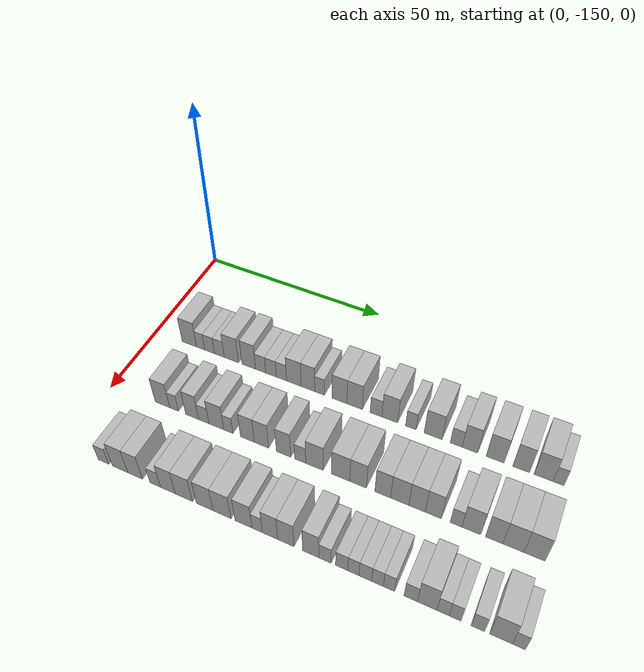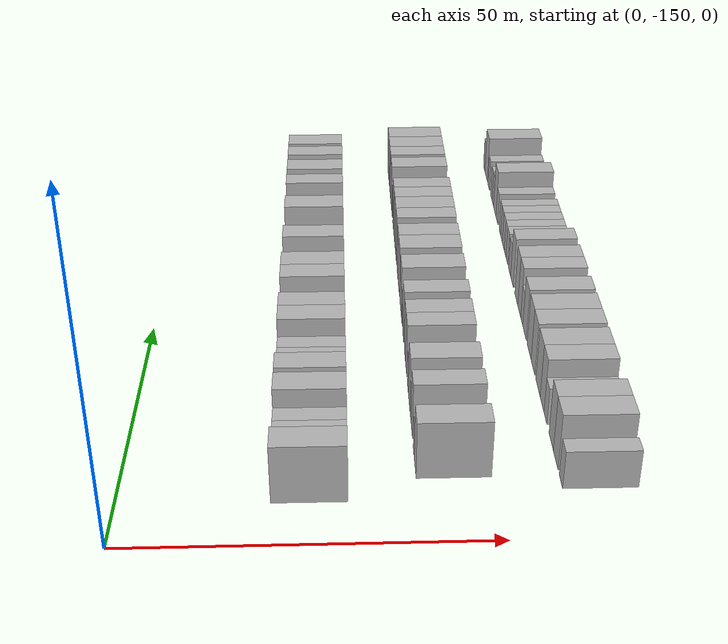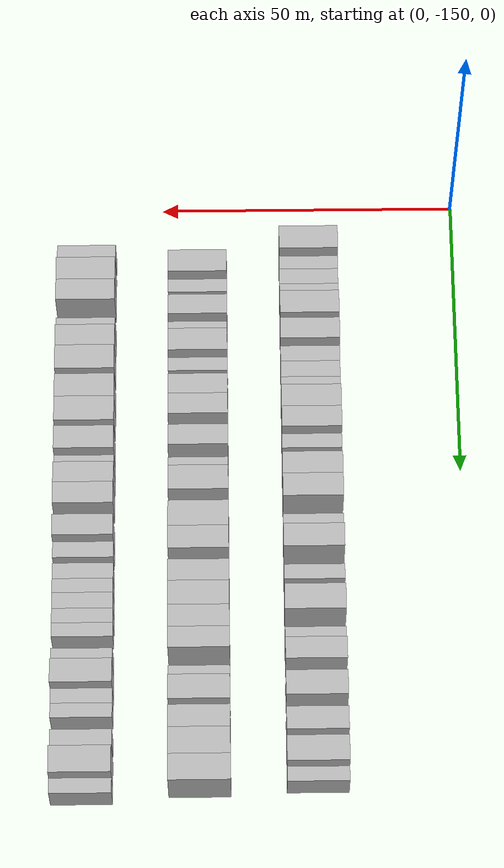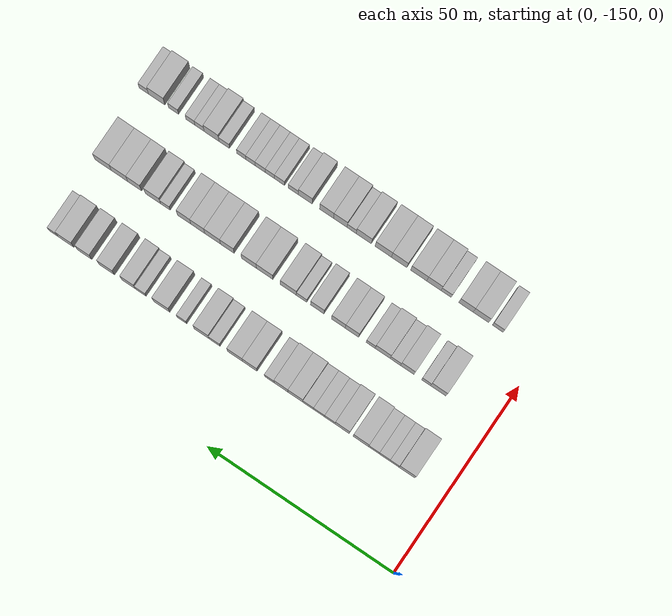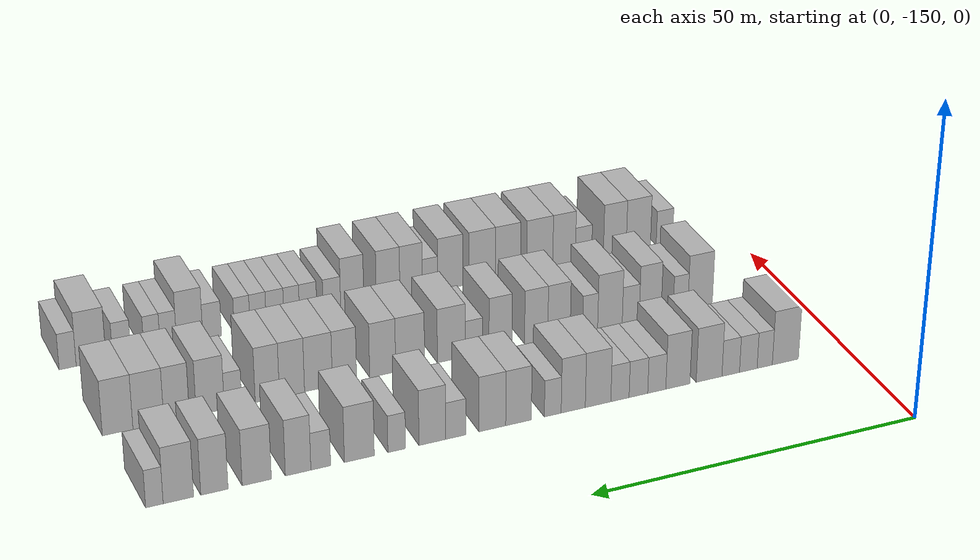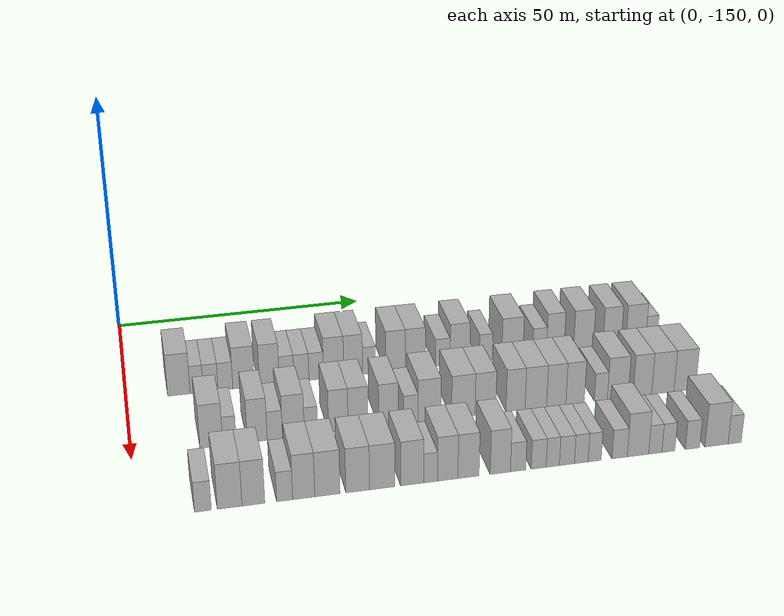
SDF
<sdf version="1.6">
 <world name="default">
  <model name="building_25">
   <static>1</static>
   <pose>25.0000 -140.0256 0 0.000000 0.000000 0.000000</pose>
   <link name="link">
    <pose>0 0 4.50 0 0 0</pose>
    <collision name="collision"><geometry><box><size>10.0000 4.2623 9.0000</size></box></geometry></collision>
    <visual name="visual">
     <cast_shadows>0</cast_shadows>
     <geometry><box><size>10.0000 4.2623 9.0000</size></box></geometry>
     <material>
      <script>
       <uri>model://HANNAS_wall/materials/scripts</uri>
       <uri>model://HANNAS_wall/materials/textures</uri>
       <name>vrc/HANNAS_wall</name>
      </script>
     </material>
    </visual>
   </link>
  </model>
  <model name="building_26">
   <static>1</static>
   <pose>25.0000 -136.6577 0 0.000000 0.000000 0.000000</pose>
   <link name="link">
    <pose>0 0 3.00 0 0 0</pose>
    <collision name="collision"><geometry><box><size>10.0000 2.4735 6.0000</size></box></geometry></collision>
    <visual name="visual">
     <cast_shadows>0</cast_shadows>
     <geometry><box><size>10.0000 2.4735 6.0000</size></box></geometry>
     <material>
      <script>
       <uri>model://HANNAS_wall/materials/scripts</uri>
       <uri>model://HANNAS_wall/materials/textures</uri>
       <name>vrc/HANNAS_wall</name>
      </script>
     </material>
    </visual>
   </link>
  </model>
  <model name="building_27">
   <static>1</static>
   <pose>25.0000 -133.9958 0 0.000000 0.000000 0.000000</pose>
   <link name="link">
    <pose>0 0 3.00 0 0 0</pose>
    <collision name="collision"><geometry><box><size>10.0000 2.8502 6.0000</size></box></geometry></collision>
    <visual name="visual">
     <cast_shadows>0</cast_shadows>
     <geometry><box><size>10.0000 2.8502 6.0000</size></box></geometry>
     <material>
      <script>
       <uri>model://HANNAS_wall/materials/scripts</uri>
       <uri>model://HANNAS_wall/materials/textures</uri>
       <name>vrc/HANNAS_wall</name>
      </script>
     </material>
    </visual>
   </link>
  </model>
  <model name="building_28">
   <static>1</static>
   <pose>25.0000 -131.1555 0 0.000000 0.000000 0.000000</pose>
   <link name="link">
    <pose>0 0 3.00 0 0 0</pose>
    <collision name="collision"><geometry><box><size>10.0000 2.8305 6.0000</size></box></geometry></collision>
    <visual name="visual">
     <cast_shadows>0</cast_shadows>
     <geometry><box><size>10.0000 2.8305 6.0000</size></box></geometry>
     <material>
      <script>
       <uri>model://HANNAS_wall/materials/scripts</uri>
       <uri>model://HANNAS_wall/materials/textures</uri>
       <name>vrc/HANNAS_wall</name>
      </script>
     </material>
    </visual>
   </link>
  </model>
  <model name="building_29">
   <static>1</static>
   <pose>25.0000 -127.6747 0 0.000000 0.000000 0.000000</pose>
   <link name="link">
    <pose>0 0 4.50 0 0 0</pose>
    <collision name="collision"><geometry><box><size>10.0000 4.1310 9.0000</size></box></geometry></collision>
    <visual name="visual">
     <cast_shadows>0</cast_shadows>
     <geometry><box><size>10.0000 4.1310 9.0000</size></box></geometry>
     <material>
      <script>
       <uri>model://HANNAS_wall/materials/scripts</uri>
       <uri>model://HANNAS_wall/materials/textures</uri>
       <name>vrc/HANNAS_wall</name>
      </script>
     </material>
    </visual>
   </link>
  </model>
  <model name="building_30">
   <static>1</static>
   <pose>25.0000 -122.6951 0 0.000000 0.000000 0.000000</pose>
   <link name="link">
    <pose>0 0 4.50 0 0 0</pose>
    <collision name="collision"><geometry><box><size>10.0000 3.8283 9.0000</size></box></geometry></collision>
    <visual name="visual">
     <cast_shadows>0</cast_shadows>
     <geometry><box><size>10.0000 3.8283 9.0000</size></box></geometry>
     <material>
      <script>
       <uri>model://HANNAS_wall/materials/scripts</uri>
       <uri>model://HANNAS_wall/materials/textures</uri>
       <name>vrc/HANNAS_wall</name>
      </script>
     </material>
    </visual>
   </link>
  </model>
  <model name="building_31">
   <static>1</static>
   <pose>25.0000 -119.3521 0 0.000000 0.000000 0.000000</pose>
   <link name="link">
    <pose>0 0 3.00 0 0 0</pose>
    <collision name="collision"><geometry><box><size>10.0000 2.8576 6.0000</size></box></geometry></collision>
    <visual name="visual">
     <cast_shadows>0</cast_shadows>
     <geometry><box><size>10.0000 2.8576 6.0000</size></box></geometry>
     <material>
      <script>
       <uri>model://HANNAS_wall/materials/scripts</uri>
       <uri>model://HANNAS_wall/materials/textures</uri>
       <name>vrc/HANNAS_wall</name>
      </script>
     </material>
    </visual>
   </link>
  </model>
  <model name="building_32">
   <static>1</static>
   <pose>25.0000 -116.4563 0 0.000000 0.000000 0.000000</pose>
   <link name="link">
    <pose>0 0 3.00 0 0 0</pose>
    <collision name="collision"><geometry><box><size>10.0000 2.9341 6.0000</size></box></geometry></collision>
    <visual name="visual">
     <cast_shadows>0</cast_shadows>
     <geometry><box><size>10.0000 2.9341 6.0000</size></box></geometry>
     <material>
      <script>
       <uri>model://HANNAS_wall/materials/scripts</uri>
       <uri>model://HANNAS_wall/materials/textures</uri>
       <name>vrc/HANNAS_wall</name>
      </script>
     </material>
    </visual>
   </link>
  </model>
  <model name="building_33">
   <static>1</static>
   <pose>25.0000 -113.5589 0 0.000000 0.000000 0.000000</pose>
   <link name="link">
    <pose>0 0 3.00 0 0 0</pose>
    <collision name="collision"><geometry><box><size>10.0000 2.8606 6.0000</size></box></geometry></collision>
    <visual name="visual">
     <cast_shadows>0</cast_shadows>
     <geometry><box><size>10.0000 2.8606 6.0000</size></box></geometry>
     <material>
      <script>
       <uri>model://HANNAS_wall/materials/scripts</uri>
       <uri>model://HANNAS_wall/materials/textures</uri>
       <name>vrc/HANNAS_wall</name>
      </script>
     </material>
    </visual>
   </link>
  </model>
  <model name="building_34">
   <static>1</static>
   <pose>25.0000 -110.1387 0 0.000000 0.000000 0.000000</pose>
   <link name="link">
    <pose>0 0 4.50 0 0 0</pose>
    <collision name="collision"><geometry><box><size>10.0000 3.9799 9.0000</size></box></geometry></collision>
    <visual name="visual">
     <cast_shadows>0</cast_shadows>
     <geometry><box><size>10.0000 3.9799 9.0000</size></box></geometry>
     <material>
      <script>
       <uri>model://HANNAS_wall/materials/scripts</uri>
       <uri>model://HANNAS_wall/materials/textures</uri>
       <name>vrc/HANNAS_wall</name>
      </script>
     </material>
    </visual>
   </link>
  </model>
  <model name="building_35">
   <static>1</static>
   <pose>25.0000 -106.2834 0 0.000000 0.000000 0.000000</pose>
   <link name="link">
    <pose>0 0 4.50 0 0 0</pose>
    <collision name="collision"><geometry><box><size>10.0000 3.7308 9.0000</size></box></geometry></collision>
    <visual name="visual">
     <cast_shadows>0</cast_shadows>
     <geometry><box><size>10.0000 3.7308 9.0000</size></box></geometry>
     <material>
      <script>
       <uri>model://HANNAS_wall/materials/scripts</uri>
       <uri>model://HANNAS_wall/materials/textures</uri>
       <name>vrc/HANNAS_wall</name>
      </script>
     </material>
    </visual>
   </link>
  </model>
  <model name="building_36">
   <static>1</static>
   <pose>25.0000 -103.1273 0 0.000000 0.000000 0.000000</pose>
   <link name="link">
    <pose>0 0 3.00 0 0 0</pose>
    <collision name="collision"><geometry><box><size>10.0000 2.5815 6.0000</size></box></geometry></collision>
    <visual name="visual">
     <cast_shadows>0</cast_shadows>
     <geometry><box><size>10.0000 2.5815 6.0000</size></box></geometry>
     <material>
      <script>
       <uri>model://HANNAS_wall/materials/scripts</uri>
       <uri>model://HANNAS_wall/materials/textures</uri>
       <name>vrc/HANNAS_wall</name>
      </script>
     </material>
    </visual>
   </link>
  </model>
  <model name="building_37">
   <static>1</static>
   <pose>25.0000 -97.8834 0 0.000000 0.000000 0.000000</pose>
   <link name="link">
    <pose>0 0 4.50 0 0 0</pose>
    <collision name="collision"><geometry><box><size>10.0000 3.9064 9.0000</size></box></geometry></collision>
    <visual name="visual">
     <cast_shadows>0</cast_shadows>
     <geometry><box><size>10.0000 3.9064 9.0000</size></box></geometry>
     <material>
      <script>
       <uri>model://HANNAS_wall/materials/scripts</uri>
       <uri>model://HANNAS_wall/materials/textures</uri>
       <name>vrc/HANNAS_wall</name>
      </script>
     </material>
    </visual>
   </link>
  </model>
  <model name="building_38">
   <static>1</static>
   <pose>25.0000 -93.9067 0 0.000000 0.000000 0.000000</pose>
   <link name="link">
    <pose>0 0 4.50 0 0 0</pose>
    <collision name="collision"><geometry><box><size>10.0000 4.0469 9.0000</size></box></geometry></collision>
    <visual name="visual">
     <cast_shadows>0</cast_shadows>
     <geometry><box><size>10.0000 4.0469 9.0000</size></box></geometry>
     <material>
      <script>
       <uri>model://HANNAS_wall/materials/scripts</uri>
       <uri>model://HANNAS_wall/materials/textures</uri>
       <name>vrc/HANNAS_wall</name>
      </script>
     </material>
    </visual>
   </link>
  </model>
  <model name="building_39">
   <static>1</static>
   <pose>25.0000 -88.3887 0 0.000000 0.000000 0.000000</pose>
   <link name="link">
    <pose>0 0 3.00 0 0 0</pose>
    <collision name="collision"><geometry><box><size>10.0000 2.9891 6.0000</size></box></geometry></collision>
    <visual name="visual">
     <cast_shadows>0</cast_shadows>
     <geometry><box><size>10.0000 2.9891 6.0000</size></box></geometry>
     <material>
      <script>
       <uri>model://HANNAS_wall/materials/scripts</uri>
       <uri>model://HANNAS_wall/materials/textures</uri>
       <name>vrc/HANNAS_wall</name>
      </script>
     </material>
    </visual>
   </link>
  </model>
  <model name="building_40">
   <static>1</static>
   <pose>25.0000 -84.8901 0 0.000000 0.000000 0.000000</pose>
   <link name="link">
    <pose>0 0 4.50 0 0 0</pose>
    <collision name="collision"><geometry><box><size>10.0000 4.0083 9.0000</size></box></geometry></collision>
    <visual name="visual">
     <cast_shadows>0</cast_shadows>
     <geometry><box><size>10.0000 4.0083 9.0000</size></box></geometry>
     <material>
      <script>
       <uri>model://HANNAS_wall/materials/scripts</uri>
       <uri>model://HANNAS_wall/materials/textures</uri>
       <name>vrc/HANNAS_wall</name>
      </script>
     </material>
    </visual>
   </link>
  </model>
  <model name="building_41">
   <static>1</static>
   <pose>25.0000 -79.5864 0 0.000000 0.000000 0.000000</pose>
   <link name="link">
    <pose>0 0 3.00 0 0 0</pose>
    <collision name="collision"><geometry><box><size>10.0000 2.5991 6.0000</size></box></geometry></collision>
    <visual name="visual">
     <cast_shadows>0</cast_shadows>
     <geometry><box><size>10.0000 2.5991 6.0000</size></box></geometry>
     <material>
      <script>
       <uri>model://HANNAS_wall/materials/scripts</uri>
       <uri>model://HANNAS_wall/materials/textures</uri>
       <name>vrc/HANNAS_wall</name>
      </script>
     </material>
    </visual>
   </link>
  </model>
  <model name="building_42">
   <static>1</static>
   <pose>25.0000 -74.0940 0 0.000000 0.000000 0.000000</pose>
   <link name="link">
    <pose>0 0 4.50 0 0 0</pose>
    <collision name="collision"><geometry><box><size>10.0000 4.3855 9.0000</size></box></geometry></collision>
    <visual name="visual">
     <cast_shadows>0</cast_shadows>
     <geometry><box><size>10.0000 4.3855 9.0000</size></box></geometry>
     <material>
      <script>
       <uri>model://HANNAS_wall/materials/scripts</uri>
       <uri>model://HANNAS_wall/materials/textures</uri>
       <name>vrc/HANNAS_wall</name>
      </script>
     </material>
    </visual>
   </link>
  </model>
  <model name="building_43">
   <static>1</static>
   <pose>25.0000 -68.4667 0 0.000000 0.000000 0.000000</pose>
   <link name="link">
    <pose>0 0 3.00 0 0 0</pose>
    <collision name="collision"><geometry><box><size>10.0000 2.8691 6.0000</size></box></geometry></collision>
    <visual name="visual">
     <cast_shadows>0</cast_shadows>
     <geometry><box><size>10.0000 2.8691 6.0000</size></box></geometry>
     <material>
      <script>
       <uri>model://HANNAS_wall/materials/scripts</uri>
       <uri>model://HANNAS_wall/materials/textures</uri>
       <name>vrc/HANNAS_wall</name>
      </script>
     </material>
    </visual>
   </link>
  </model>
  <model name="building_44">
   <static>1</static>
   <pose>25.0000 -65.1917 0 0.000000 0.000000 0.000000</pose>
   <link name="link">
    <pose>0 0 4.50 0 0 0</pose>
    <collision name="collision"><geometry><box><size>10.0000 3.6809 9.0000</size></box></geometry></collision>
    <visual name="visual">
     <cast_shadows>0</cast_shadows>
     <geometry><box><size>10.0000 3.6809 9.0000</size></box></geometry>
     <material>
      <script>
       <uri>model://HANNAS_wall/materials/scripts</uri>
       <uri>model://HANNAS_wall/materials/textures</uri>
       <name>vrc/HANNAS_wall</name>
      </script>
     </material>
    </visual>
   </link>
  </model>
  <model name="building_45">
   <static>1</static>
   <pose>25.0000 -59.2652 0 0.000000 0.000000 0.000000</pose>
   <link name="link">
    <pose>0 0 4.50 0 0 0</pose>
    <collision name="collision"><geometry><box><size>10.0000 4.1720 9.0000</size></box></geometry></collision>
    <visual name="visual">
     <cast_shadows>0</cast_shadows>
     <geometry><box><size>10.0000 4.1720 9.0000</size></box></geometry>
     <material>
      <script>
       <uri>model://HANNAS_wall/materials/scripts</uri>
       <uri>model://HANNAS_wall/materials/textures</uri>
       <name>vrc/HANNAS_wall</name>
      </script>
     </material>
    </visual>
   </link>
  </model>
  <model name="building_46">
   <static>1</static>
   <pose>25.0000 -53.2486 0 0.000000 0.000000 0.000000</pose>
   <link name="link">
    <pose>0 0 4.50 0 0 0</pose>
    <collision name="collision"><geometry><box><size>10.0000 3.8611 9.0000</size></box></geometry></collision>
    <visual name="visual">
     <cast_shadows>0</cast_shadows>
     <geometry><box><size>10.0000 3.8611 9.0000</size></box></geometry>
     <material>
      <script>
       <uri>model://HANNAS_wall/materials/scripts</uri>
       <uri>model://HANNAS_wall/materials/textures</uri>
       <name>vrc/HANNAS_wall</name>
      </script>
     </material>
    </visual>
   </link>
  </model>
  <model name="building_47">
   <static>1</static>
   <pose>25.0000 -48.1842 0 0.000000 0.000000 0.000000</pose>
   <link name="link">
    <pose>0 0 4.50 0 0 0</pose>
    <collision name="collision"><geometry><box><size>10.0000 4.2677 9.0000</size></box></geometry></collision>
    <visual name="visual">
     <cast_shadows>0</cast_shadows>
     <geometry><box><size>10.0000 4.2677 9.0000</size></box></geometry>
     <material>
      <script>
       <uri>model://HANNAS_wall/materials/scripts</uri>
       <uri>model://HANNAS_wall/materials/textures</uri>
       <name>vrc/HANNAS_wall</name>
      </script>
     </material>
    </visual>
   </link>
  </model>
  <model name="building_48">
   <static>1</static>
   <pose>25.0000 -44.8295 0 0.000000 0.000000 0.000000</pose>
   <link name="link">
    <pose>0 0 3.00 0 0 0</pose>
    <collision name="collision"><geometry><box><size>10.0000 2.4418 6.0000</size></box></geometry></collision>
    <visual name="visual">
     <cast_shadows>0</cast_shadows>
     <geometry><box><size>10.0000 2.4418 6.0000</size></box></geometry>
     <material>
      <script>
       <uri>model://HANNAS_wall/materials/scripts</uri>
       <uri>model://HANNAS_wall/materials/textures</uri>
       <name>vrc/HANNAS_wall</name>
      </script>
     </material>
    </visual>
   </link>
  </model>
  <model name="building_147">
   <static>1</static>
   <pose>44.0000 -135.6973 0 0.000000 0.000000 0.000000</pose>
   <link name="link">
    <pose>0 0 4.50 0 0 0</pose>
    <collision name="collision"><geometry><box><size>10.0000 4.0945 9.0000</size></box></geometry></collision>
    <visual name="visual">
     <cast_shadows>0</cast_shadows>
     <geometry><box><size>10.0000 4.0945 9.0000</size></box></geometry>
     <material>
      <script>
       <uri>model://HANNAS_wall/materials/scripts</uri>
       <uri>model://HANNAS_wall/materials/textures</uri>
       <name>vrc/HANNAS_wall</name>
      </script>
     </material>
    </visual>
   </link>
  </model>
  <model name="building_148">
   <static>1</static>
   <pose>44.0000 -132.4301 0 0.000000 0.000000 0.000000</pose>
   <link name="link">
    <pose>0 0 3.00 0 0 0</pose>
    <collision name="collision"><geometry><box><size>10.0000 2.4400 6.0000</size></box></geometry></collision>
    <visual name="visual">
     <cast_shadows>0</cast_shadows>
     <geometry><box><size>10.0000 2.4400 6.0000</size></box></geometry>
     <material>
      <script>
       <uri>model://HANNAS_wall/materials/scripts</uri>
       <uri>model://HANNAS_wall/materials/textures</uri>
       <name>vrc/HANNAS_wall</name>
      </script>
     </material>
    </visual>
   </link>
  </model>
  <model name="building_149">
   <static>1</static>
   <pose>44.0000 -127.4025 0 0.000000 0.000000 0.000000</pose>
   <link name="link">
    <pose>0 0 4.50 0 0 0</pose>
    <collision name="collision"><geometry><box><size>10.0000 3.6152 9.0000</size></box></geometry></collision>
    <visual name="visual">
     <cast_shadows>0</cast_shadows>
     <geometry><box><size>10.0000 3.6152 9.0000</size></box></geometry>
     <material>
      <script>
       <uri>model://HANNAS_wall/materials/scripts</uri>
       <uri>model://HANNAS_wall/materials/textures</uri>
       <name>vrc/HANNAS_wall</name>
      </script>
     </material>
    </visual>
   </link>
  </model>
  <model name="building_150">
   <static>1</static>
   <pose>44.0000 -124.2052 0 0.000000 0.000000 0.000000</pose>
   <link name="link">
    <pose>0 0 3.00 0 0 0</pose>
    <collision name="collision"><geometry><box><size>10.0000 2.7794 6.0000</size></box></geometry></collision>
    <visual name="visual">
     <cast_shadows>0</cast_shadows>
     <geometry><box><size>10.0000 2.7794 6.0000</size></box></geometry>
     <material>
      <script>
       <uri>model://HANNAS_wall/materials/scripts</uri>
       <uri>model://HANNAS_wall/materials/textures</uri>
       <name>vrc/HANNAS_wall</name>
      </script>
     </material>
    </visual>
   </link>
  </model>
  <model name="building_151">
   <static>1</static>
   <pose>44.0000 -120.8049 0 0.000000 0.000000 0.000000</pose>
   <link name="link">
    <pose>0 0 4.50 0 0 0</pose>
    <collision name="collision"><geometry><box><size>10.0000 4.0211 9.0000</size></box></geometry></collision>
    <visual name="visual">
     <cast_shadows>0</cast_shadows>
     <geometry><box><size>10.0000 4.0211 9.0000</size></box></geometry>
     <material>
      <script>
       <uri>model://HANNAS_wall/materials/scripts</uri>
       <uri>model://HANNAS_wall/materials/textures</uri>
       <name>vrc/HANNAS_wall</name>
      </script>
     </material>
    </visual>
   </link>
  </model>
  <model name="building_152">
   <static>1</static>
   <pose>44.0000 -117.5656 0 0.000000 0.000000 0.000000</pose>
   <link name="link">
    <pose>0 0 3.00 0 0 0</pose>
    <collision name="collision"><geometry><box><size>10.0000 2.4576 6.0000</size></box></geometry></collision>
    <visual name="visual">
     <cast_shadows>0</cast_shadows>
     <geometry><box><size>10.0000 2.4576 6.0000</size></box></geometry>
     <material>
      <script>
       <uri>model://HANNAS_wall/materials/scripts</uri>
       <uri>model://HANNAS_wall/materials/textures</uri>
       <name>vrc/HANNAS_wall</name>
      </script>
     </material>
    </visual>
   </link>
  </model>
  <model name="building_153">
   <static>1</static>
   <pose>44.0000 -112.5289 0 0.000000 0.000000 0.000000</pose>
   <link name="link">
    <pose>0 0 4.50 0 0 0</pose>
    <collision name="collision"><geometry><box><size>10.0000 3.6159 9.0000</size></box></geometry></collision>
    <visual name="visual">
     <cast_shadows>0</cast_shadows>
     <geometry><box><size>10.0000 3.6159 9.0000</size></box></geometry>
     <material>
      <script>
       <uri>model://HANNAS_wall/materials/scripts</uri>
       <uri>model://HANNAS_wall/materials/textures</uri>
       <name>vrc/HANNAS_wall</name>
      </script>
     </material>
    </visual>
   </link>
  </model>
  <model name="building_154">
   <static>1</static>
   <pose>44.0000 -108.8619 0 0.000000 0.000000 0.000000</pose>
   <link name="link">
    <pose>0 0 4.50 0 0 0</pose>
    <collision name="collision"><geometry><box><size>10.0000 3.7181 9.0000</size></box></geometry></collision>
    <visual name="visual">
     <cast_shadows>0</cast_shadows>
     <geometry><box><size>10.0000 3.7181 9.0000</size></box></geometry>
     <material>
      <script>
       <uri>model://HANNAS_wall/materials/scripts</uri>
       <uri>model://HANNAS_wall/materials/textures</uri>
       <name>vrc/HANNAS_wall</name>
      </script>
     </material>
    </visual>
   </link>
  </model>
  <model name="building_155">
   <static>1</static>
   <pose>44.0000 -103.1716 0 0.000000 0.000000 0.000000</pose>
   <link name="link">
    <pose>0 0 4.50 0 0 0</pose>
    <collision name="collision"><geometry><box><size>10.0000 3.6625 9.0000</size></box></geometry></collision>
    <visual name="visual">
     <cast_shadows>0</cast_shadows>
     <geometry><box><size>10.0000 3.6625 9.0000</size></box></geometry>
     <material>
      <script>
       <uri>model://HANNAS_wall/materials/scripts</uri>
       <uri>model://HANNAS_wall/materials/textures</uri>
       <name>vrc/HANNAS_wall</name>
      </script>
     </material>
    </visual>
   </link>
  </model>
  <model name="building_156">
   <static>1</static>
   <pose>44.0000 -98.9568 0 0.000000 0.000000 0.000000</pose>
   <link name="link">
    <pose>0 0 3.00 0 0 0</pose>
    <collision name="collision"><geometry><box><size>10.0000 2.7672 6.0000</size></box></geometry></collision>
    <visual name="visual">
     <cast_shadows>0</cast_shadows>
     <geometry><box><size>10.0000 2.7672 6.0000</size></box></geometry>
     <material>
      <script>
       <uri>model://HANNAS_wall/materials/scripts</uri>
       <uri>model://HANNAS_wall/materials/textures</uri>
       <name>vrc/HANNAS_wall</name>
      </script>
     </material>
    </visual>
   </link>
  </model>
  <model name="building_157">
   <static>1</static>
   <pose>44.0000 -95.4016 0 0.000000 0.000000 0.000000</pose>
   <link name="link">
    <pose>0 0 4.50 0 0 0</pose>
    <collision name="collision"><geometry><box><size>10.0000 4.3432 9.0000</size></box></geometry></collision>
    <visual name="visual">
     <cast_shadows>0</cast_shadows>
     <geometry><box><size>10.0000 4.3432 9.0000</size></box></geometry>
     <material>
      <script>
       <uri>model://HANNAS_wall/materials/scripts</uri>
       <uri>model://HANNAS_wall/materials/textures</uri>
       <name>vrc/HANNAS_wall</name>
      </script>
     </material>
    </visual>
   </link>
  </model>
  <model name="building_158">
   <static>1</static>
   <pose>44.0000 -88.9884 0 0.000000 0.000000 0.000000</pose>
   <link name="link">
    <pose>0 0 4.50 0 0 0</pose>
    <collision name="collision"><geometry><box><size>10.0000 4.4830 9.0000</size></box></geometry></collision>
    <visual name="visual">
     <cast_shadows>0</cast_shadows>
     <geometry><box><size>10.0000 4.4830 9.0000</size></box></geometry>
     <material>
      <script>
       <uri>model://HANNAS_wall/materials/scripts</uri>
       <uri>model://HANNAS_wall/materials/textures</uri>
       <name>vrc/HANNAS_wall</name>
      </script>
     </material>
    </visual>
   </link>
  </model>
  <model name="building_159">
   <static>1</static>
   <pose>44.0000 -84.7478 0 0.000000 0.000000 0.000000</pose>
   <link name="link">
    <pose>0 0 4.50 0 0 0</pose>
    <collision name="collision"><geometry><box><size>10.0000 3.9983 9.0000</size></box></geometry></collision>
    <visual name="visual">
     <cast_shadows>0</cast_shadows>
     <geometry><box><size>10.0000 3.9983 9.0000</size></box></geometry>
     <material>
      <script>
       <uri>model://HANNAS_wall/materials/scripts</uri>
       <uri>model://HANNAS_wall/materials/textures</uri>
       <name>vrc/HANNAS_wall</name>
      </script>
     </material>
    </visual>
   </link>
  </model>
  <model name="building_160">
   <static>1</static>
   <pose>44.0000 -78.8987 0 0.000000 0.000000 0.000000</pose>
   <link name="link">
    <pose>0 0 4.50 0 0 0</pose>
    <collision name="collision"><geometry><box><size>10.0000 3.6998 9.0000</size></box></geometry></collision>
    <visual name="visual">
     <cast_shadows>0</cast_shadows>
     <geometry><box><size>10.0000 3.6998 9.0000</size></box></geometry>
     <material>
      <script>
       <uri>model://HANNAS_wall/materials/scripts</uri>
       <uri>model://HANNAS_wall/materials/textures</uri>
       <name>vrc/HANNAS_wall</name>
      </script>
     </material>
    </visual>
   </link>
  </model>
  <model name="building_161">
   <static>1</static>
   <pose>44.0000 -74.9380 0 0.000000 0.000000 0.000000</pose>
   <link name="link">
    <pose>0 0 4.50 0 0 0</pose>
    <collision name="collision"><geometry><box><size>10.0000 4.2216 9.0000</size></box></geometry></collision>
    <visual name="visual">
     <cast_shadows>0</cast_shadows>
     <geometry><box><size>10.0000 4.2216 9.0000</size></box></geometry>
     <material>
      <script>
       <uri>model://HANNAS_wall/materials/scripts</uri>
       <uri>model://HANNAS_wall/materials/textures</uri>
       <name>vrc/HANNAS_wall</name>
      </script>
     </material>
    </visual>
   </link>
  </model>
  <model name="building_162">
   <static>1</static>
   <pose>44.0000 -70.9359 0 0.000000 0.000000 0.000000</pose>
   <link name="link">
    <pose>0 0 4.50 0 0 0</pose>
    <collision name="collision"><geometry><box><size>10.0000 3.7825 9.0000</size></box></geometry></collision>
    <visual name="visual">
     <cast_shadows>0</cast_shadows>
     <geometry><box><size>10.0000 3.7825 9.0000</size></box></geometry>
     <material>
      <script>
       <uri>model://HANNAS_wall/materials/scripts</uri>
       <uri>model://HANNAS_wall/materials/textures</uri>
       <name>vrc/HANNAS_wall</name>
      </script>
     </material>
    </visual>
   </link>
  </model>
  <model name="building_163">
   <static>1</static>
   <pose>44.0000 -67.2326 0 0.000000 0.000000 0.000000</pose>
   <link name="link">
    <pose>0 0 4.50 0 0 0</pose>
    <collision name="collision"><geometry><box><size>10.0000 3.6241 9.0000</size></box></geometry></collision>
    <visual name="visual">
     <cast_shadows>0</cast_shadows>
     <geometry><box><size>10.0000 3.6241 9.0000</size></box></geometry>
     <material>
      <script>
       <uri>model://HANNAS_wall/materials/scripts</uri>
       <uri>model://HANNAS_wall/materials/textures</uri>
       <name>vrc/HANNAS_wall</name>
      </script>
     </material>
    </visual>
   </link>
  </model>
  <model name="building_164">
   <static>1</static>
   <pose>44.0000 -62.1228 0 0.000000 0.000000 0.000000</pose>
   <link name="link">
    <pose>0 0 3.00 0 0 0</pose>
    <collision name="collision"><geometry><box><size>10.0000 2.5956 6.0000</size></box></geometry></collision>
    <visual name="visual">
     <cast_shadows>0</cast_shadows>
     <geometry><box><size>10.0000 2.5956 6.0000</size></box></geometry>
     <material>
      <script>
       <uri>model://HANNAS_wall/materials/scripts</uri>
       <uri>model://HANNAS_wall/materials/textures</uri>
       <name>vrc/HANNAS_wall</name>
      </script>
     </material>
    </visual>
   </link>
  </model>
  <model name="building_165">
   <static>1</static>
   <pose>44.0000 -58.7530 0 0.000000 0.000000 0.000000</pose>
   <link name="link">
    <pose>0 0 4.50 0 0 0</pose>
    <collision name="collision"><geometry><box><size>10.0000 4.1440 9.0000</size></box></geometry></collision>
    <visual name="visual">
     <cast_shadows>0</cast_shadows>
     <geometry><box><size>10.0000 4.1440 9.0000</size></box></geometry>
     <material>
      <script>
       <uri>model://HANNAS_wall/materials/scripts</uri>
       <uri>model://HANNAS_wall/materials/textures</uri>
       <name>vrc/HANNAS_wall</name>
      </script>
     </material>
    </visual>
   </link>
  </model>
  <model name="building_166">
   <static>1</static>
   <pose>44.0000 -53.8088 0 0.000000 0.000000 0.000000</pose>
   <link name="link">
    <pose>0 0 4.50 0 0 0</pose>
    <collision name="collision"><geometry><box><size>10.0000 3.7443 9.0000</size></box></geometry></collision>
    <visual name="visual">
     <cast_shadows>0</cast_shadows>
     <geometry><box><size>10.0000 3.7443 9.0000</size></box></geometry>
     <material>
      <script>
       <uri>model://HANNAS_wall/materials/scripts</uri>
       <uri>model://HANNAS_wall/materials/textures</uri>
       <name>vrc/HANNAS_wall</name>
      </script>
     </material>
    </visual>
   </link>
  </model>
  <model name="building_167">
   <static>1</static>
   <pose>44.0000 -49.6888 0 0.000000 0.000000 0.000000</pose>
   <link name="link">
    <pose>0 0 4.50 0 0 0</pose>
    <collision name="collision"><geometry><box><size>10.0000 4.4956 9.0000</size></box></geometry></collision>
    <visual name="visual">
     <cast_shadows>0</cast_shadows>
     <geometry><box><size>10.0000 4.4956 9.0000</size></box></geometry>
     <material>
      <script>
       <uri>model://HANNAS_wall/materials/scripts</uri>
       <uri>model://HANNAS_wall/materials/textures</uri>
       <name>vrc/HANNAS_wall</name>
      </script>
     </material>
    </visual>
   </link>
  </model>
  <model name="building_168">
   <static>1</static>
   <pose>44.0000 -45.2349 0 0.000000 0.000000 0.000000</pose>
   <link name="link">
    <pose>0 0 4.50 0 0 0</pose>
    <collision name="collision"><geometry><box><size>10.0000 4.4123 9.0000</size></box></geometry></collision>
    <visual name="visual">
     <cast_shadows>0</cast_shadows>
     <geometry><box><size>10.0000 4.4123 9.0000</size></box></geometry>
     <material>
      <script>
       <uri>model://HANNAS_wall/materials/scripts</uri>
       <uri>model://HANNAS_wall/materials/textures</uri>
       <name>vrc/HANNAS_wall</name>
      </script>
     </material>
    </visual>
   </link>
  </model>
  <model name="building_264">
   <static>1</static>
   <pose>63.0000 -138.9544 0 0.000000 0.000000 0.000000</pose>
   <link name="link">
    <pose>0 0 3.00 0 0 0</pose>
    <collision name="collision"><geometry><box><size>10.0000 2.8360 6.0000</size></box></geometry></collision>
    <visual name="visual">
     <cast_shadows>0</cast_shadows>
     <geometry><box><size>10.0000 2.8360 6.0000</size></box></geometry>
     <material>
      <script>
       <uri>model://HANNAS_wall/materials/scripts</uri>
       <uri>model://HANNAS_wall/materials/textures</uri>
       <name>vrc/HANNAS_wall</name>
      </script>
     </material>
    </visual>
   </link>
  </model>
  <model name="building_265">
   <static>1</static>
   <pose>63.0000 -134.4522 0 0.000000 0.000000 0.000000</pose>
   <link name="link">
    <pose>0 0 4.50 0 0 0</pose>
    <collision name="collision"><geometry><box><size>10.0000 4.1683 9.0000</size></box></geometry></collision>
    <visual name="visual">
     <cast_shadows>0</cast_shadows>
     <geometry><box><size>10.0000 4.1683 9.0000</size></box></geometry>
     <material>
      <script>
       <uri>model://HANNAS_wall/materials/scripts</uri>
       <uri>model://HANNAS_wall/materials/textures</uri>
       <name>vrc/HANNAS_wall</name>
      </script>
     </material>
    </visual>
   </link>
  </model>
  <model name="building_266">
   <static>1</static>
   <pose>63.0000 -130.4270 0 0.000000 0.000000 0.000000</pose>
   <link name="link">
    <pose>0 0 4.50 0 0 0</pose>
    <collision name="collision"><geometry><box><size>10.0000 3.8821 9.0000</size></box></geometry></collision>
    <visual name="visual">
     <cast_shadows>0</cast_shadows>
     <geometry><box><size>10.0000 3.8821 9.0000</size></box></geometry>
     <material>
      <script>
       <uri>model://HANNAS_wall/materials/scripts</uri>
       <uri>model://HANNAS_wall/materials/textures</uri>
       <name>vrc/HANNAS_wall</name>
      </script>
     </material>
    </visual>
   </link>
  </model>
  <model name="building_267">
   <static>1</static>
   <pose>63.0000 -125.1082 0 0.000000 0.000000 0.000000</pose>
   <link name="link">
    <pose>0 0 3.00 0 0 0</pose>
    <collision name="collision"><geometry><box><size>10.0000 2.7555 6.0000</size></box></geometry></collision>
    <visual name="visual">
     <cast_shadows>0</cast_shadows>
     <geometry><box><size>10.0000 2.7555 6.0000</size></box></geometry>
     <material>
      <script>
       <uri>model://HANNAS_wall/materials/scripts</uri>
       <uri>model://HANNAS_wall/materials/textures</uri>
       <name>vrc/HANNAS_wall</name>
      </script>
     </material>
    </visual>
   </link>
  </model>
  <model name="building_268">
   <static>1</static>
   <pose>63.0000 -121.8244 0 0.000000 0.000000 0.000000</pose>
   <link name="link">
    <pose>0 0 4.50 0 0 0</pose>
    <collision name="collision"><geometry><box><size>10.0000 3.8122 9.0000</size></box></geometry></collision>
    <visual name="visual">
     <cast_shadows>0</cast_shadows>
     <geometry><box><size>10.0000 3.8122 9.0000</size></box></geometry>
     <material>
      <script>
       <uri>model://HANNAS_wall/materials/scripts</uri>
       <uri>model://HANNAS_wall/materials/textures</uri>
       <name>vrc/HANNAS_wall</name>
      </script>
     </material>
    </visual>
   </link>
  </model>
  <model name="building_269">
   <static>1</static>
   <pose>63.0000 -117.7279 0 0.000000 0.000000 0.000000</pose>
   <link name="link">
    <pose>0 0 4.50 0 0 0</pose>
    <collision name="collision"><geometry><box><size>10.0000 4.3808 9.0000</size></box></geometry></collision>
    <visual name="visual">
     <cast_shadows>0</cast_shadows>
     <geometry><box><size>10.0000 4.3808 9.0000</size></box></geometry>
     <material>
      <script>
       <uri>model://HANNAS_wall/materials/scripts</uri>
       <uri>model://HANNAS_wall/materials/textures</uri>
       <name>vrc/HANNAS_wall</name>
      </script>
     </material>
    </visual>
   </link>
  </model>
  <model name="building_270">
   <static>1</static>
   <pose>63.0000 -112.4644 0 0.000000 0.000000 0.000000</pose>
   <link name="link">
    <pose>0 0 4.50 0 0 0</pose>
    <collision name="collision"><geometry><box><size>10.0000 4.1460 9.0000</size></box></geometry></collision>
    <visual name="visual">
     <cast_shadows>0</cast_shadows>
     <geometry><box><size>10.0000 4.1460 9.0000</size></box></geometry>
     <material>
      <script>
       <uri>model://HANNAS_wall/materials/scripts</uri>
       <uri>model://HANNAS_wall/materials/textures</uri>
       <name>vrc/HANNAS_wall</name>
      </script>
     </material>
    </visual>
   </link>
  </model>
  <model name="building_271">
   <static>1</static>
   <pose>63.0000 -108.1754 0 0.000000 0.000000 0.000000</pose>
   <link name="link">
    <pose>0 0 4.50 0 0 0</pose>
    <collision name="collision"><geometry><box><size>10.0000 4.4320 9.0000</size></box></geometry></collision>
    <visual name="visual">
     <cast_shadows>0</cast_shadows>
     <geometry><box><size>10.0000 4.4320 9.0000</size></box></geometry>
     <material>
      <script>
       <uri>model://HANNAS_wall/materials/scripts</uri>
       <uri>model://HANNAS_wall/materials/textures</uri>
       <name>vrc/HANNAS_wall</name>
      </script>
     </material>
    </visual>
   </link>
  </model>
  <model name="building_272">
   <static>1</static>
   <pose>63.0000 -102.9173 0 0.000000 0.000000 0.000000</pose>
   <link name="link">
    <pose>0 0 4.50 0 0 0</pose>
    <collision name="collision"><geometry><box><size>10.0000 4.0842 9.0000</size></box></geometry></collision>
    <visual name="visual">
     <cast_shadows>0</cast_shadows>
     <geometry><box><size>10.0000 4.0842 9.0000</size></box></geometry>
     <material>
      <script>
       <uri>model://HANNAS_wall/materials/scripts</uri>
       <uri>model://HANNAS_wall/materials/textures</uri>
       <name>vrc/HANNAS_wall</name>
      </script>
     </material>
    </visual>
   </link>
  </model>
  <model name="building_273">
   <static>1</static>
   <pose>63.0000 -99.6327 0 0.000000 0.000000 0.000000</pose>
   <link name="link">
    <pose>0 0 3.00 0 0 0</pose>
    <collision name="collision"><geometry><box><size>10.0000 2.4851 6.0000</size></box></geometry></collision>
    <visual name="visual">
     <cast_shadows>0</cast_shadows>
     <geometry><box><size>10.0000 2.4851 6.0000</size></box></geometry>
     <material>
      <script>
       <uri>model://HANNAS_wall/materials/scripts</uri>
       <uri>model://HANNAS_wall/materials/textures</uri>
       <name>vrc/HANNAS_wall</name>
      </script>
     </material>
    </visual>
   </link>
  </model>
  <model name="building_274">
   <static>1</static>
   <pose>63.0000 -96.5699 0 0.000000 0.000000 0.000000</pose>
   <link name="link">
    <pose>0 0 4.50 0 0 0</pose>
    <collision name="collision"><geometry><box><size>10.0000 3.6407 9.0000</size></box></geometry></collision>
    <visual name="visual">
     <cast_shadows>0</cast_shadows>
     <geometry><box><size>10.0000 3.6407 9.0000</size></box></geometry>
     <material>
      <script>
       <uri>model://HANNAS_wall/materials/scripts</uri>
       <uri>model://HANNAS_wall/materials/textures</uri>
       <name>vrc/HANNAS_wall</name>
      </script>
     </material>
    </visual>
   </link>
  </model>
  <model name="building_275">
   <static>1</static>
   <pose>63.0000 -92.8543 0 0.000000 0.000000 0.000000</pose>
   <link name="link">
    <pose>0 0 4.50 0 0 0</pose>
    <collision name="collision"><geometry><box><size>10.0000 3.7905 9.0000</size></box></geometry></collision>
    <visual name="visual">
     <cast_shadows>0</cast_shadows>
     <geometry><box><size>10.0000 3.7905 9.0000</size></box></geometry>
     <material>
      <script>
       <uri>model://HANNAS_wall/materials/scripts</uri>
       <uri>model://HANNAS_wall/materials/textures</uri>
       <name>vrc/HANNAS_wall</name>
      </script>
     </material>
    </visual>
   </link>
  </model>
  <model name="building_276">
   <static>1</static>
   <pose>63.0000 -87.1111 0 0.000000 0.000000 0.000000</pose>
   <link name="link">
    <pose>0 0 4.50 0 0 0</pose>
    <collision name="collision"><geometry><box><size>10.0000 3.6958 9.0000</size></box></geometry></collision>
    <visual name="visual">
     <cast_shadows>0</cast_shadows>
     <geometry><box><size>10.0000 3.6958 9.0000</size></box></geometry>
     <material>
      <script>
       <uri>model://HANNAS_wall/materials/scripts</uri>
       <uri>model://HANNAS_wall/materials/textures</uri>
       <name>vrc/HANNAS_wall</name>
      </script>
     </material>
    </visual>
   </link>
  </model>
  <model name="building_277">
   <static>1</static>
   <pose>63.0000 -83.8775 0 0.000000 0.000000 0.000000</pose>
   <link name="link">
    <pose>0 0 3.00 0 0 0</pose>
    <collision name="collision"><geometry><box><size>10.0000 2.7714 6.0000</size></box></geometry></collision>
    <visual name="visual">
     <cast_shadows>0</cast_shadows>
     <geometry><box><size>10.0000 2.7714 6.0000</size></box></geometry>
     <material>
      <script>
       <uri>model://HANNAS_wall/materials/scripts</uri>
       <uri>model://HANNAS_wall/materials/textures</uri>
       <name>vrc/HANNAS_wall</name>
      </script>
     </material>
    </visual>
   </link>
  </model>
  <model name="building_278">
   <static>1</static>
   <pose>63.0000 -80.1252 0 0.000000 0.000000 0.000000</pose>
   <link name="link">
    <pose>0 0 3.00 0 0 0</pose>
    <collision name="collision"><geometry><box><size>10.0000 2.7331 6.0000</size></box></geometry></collision>
    <visual name="visual">
     <cast_shadows>0</cast_shadows>
     <geometry><box><size>10.0000 2.7331 6.0000</size></box></geometry>
     <material>
      <script>
       <uri>model://HANNAS_wall/materials/scripts</uri>
       <uri>model://HANNAS_wall/materials/textures</uri>
       <name>vrc/HANNAS_wall</name>
      </script>
     </material>
    </visual>
   </link>
  </model>
  <model name="building_279">
   <static>1</static>
   <pose>63.0000 -77.5315 0 0.000000 0.000000 0.000000</pose>
   <link name="link">
    <pose>0 0 3.00 0 0 0</pose>
    <collision name="collision"><geometry><box><size>10.0000 2.4545 6.0000</size></box></geometry></collision>
    <visual name="visual">
     <cast_shadows>0</cast_shadows>
     <geometry><box><size>10.0000 2.4545 6.0000</size></box></geometry>
     <material>
      <script>
       <uri>model://HANNAS_wall/materials/scripts</uri>
       <uri>model://HANNAS_wall/materials/textures</uri>
       <name>vrc/HANNAS_wall</name>
      </script>
     </material>
    </visual>
   </link>
  </model>
  <model name="building_280">
   <static>1</static>
   <pose>63.0000 -74.9204 0 0.000000 0.000000 0.000000</pose>
   <link name="link">
    <pose>0 0 3.00 0 0 0</pose>
    <collision name="collision"><geometry><box><size>10.0000 2.7676 6.0000</size></box></geometry></collision>
    <visual name="visual">
     <cast_shadows>0</cast_shadows>
     <geometry><box><size>10.0000 2.7676 6.0000</size></box></geometry>
     <material>
      <script>
       <uri>model://HANNAS_wall/materials/scripts</uri>
       <uri>model://HANNAS_wall/materials/textures</uri>
       <name>vrc/HANNAS_wall</name>
      </script>
     </material>
    </visual>
   </link>
  </model>
  <model name="building_281">
   <static>1</static>
   <pose>63.0000 -72.2704 0 0.000000 0.000000 0.000000</pose>
   <link name="link">
    <pose>0 0 3.00 0 0 0</pose>
    <collision name="collision"><geometry><box><size>10.0000 2.5324 6.0000</size></box></geometry></collision>
    <visual name="visual">
     <cast_shadows>0</cast_shadows>
     <geometry><box><size>10.0000 2.5324 6.0000</size></box></geometry>
     <material>
      <script>
       <uri>model://HANNAS_wall/materials/scripts</uri>
       <uri>model://HANNAS_wall/materials/textures</uri>
       <name>vrc/HANNAS_wall</name>
      </script>
     </material>
    </visual>
   </link>
  </model>
  <model name="building_282">
   <static>1</static>
   <pose>63.0000 -69.7853 0 0.000000 0.000000 0.000000</pose>
   <link name="link">
    <pose>0 0 3.00 0 0 0</pose>
    <collision name="collision"><geometry><box><size>10.0000 2.4378 6.0000</size></box></geometry></collision>
    <visual name="visual">
     <cast_shadows>0</cast_shadows>
     <geometry><box><size>10.0000 2.4378 6.0000</size></box></geometry>
     <material>
      <script>
       <uri>model://HANNAS_wall/materials/scripts</uri>
       <uri>model://HANNAS_wall/materials/textures</uri>
       <name>vrc/HANNAS_wall</name>
      </script>
     </material>
    </visual>
   </link>
  </model>
  <model name="building_283">
   <static>1</static>
   <pose>63.0000 -65.1369 0 0.000000 0.000000 0.000000</pose>
   <link name="link">
    <pose>0 0 3.00 0 0 0</pose>
    <collision name="collision"><geometry><box><size>10.0000 2.8590 6.0000</size></box></geometry></collision>
    <visual name="visual">
     <cast_shadows>0</cast_shadows>
     <geometry><box><size>10.0000 2.8590 6.0000</size></box></geometry>
     <material>
      <script>
       <uri>model://HANNAS_wall/materials/scripts</uri>
       <uri>model://HANNAS_wall/materials/textures</uri>
       <name>vrc/HANNAS_wall</name>
      </script>
     </material>
    </visual>
   </link>
  </model>
  <model name="building_284">
   <static>1</static>
   <pose>63.0000 -61.6942 0 0.000000 0.000000 0.000000</pose>
   <link name="link">
    <pose>0 0 4.50 0 0 0</pose>
    <collision name="collision"><geometry><box><size>10.0000 4.0264 9.0000</size></box></geometry></collision>
    <visual name="visual">
     <cast_shadows>0</cast_shadows>
     <geometry><box><size>10.0000 4.0264 9.0000</size></box></geometry>
     <material>
      <script>
       <uri>model://HANNAS_wall/materials/scripts</uri>
       <uri>model://HANNAS_wall/materials/textures</uri>
       <name>vrc/HANNAS_wall</name>
      </script>
     </material>
    </visual>
   </link>
  </model>
  <model name="building_285">
   <static>1</static>
   <pose>63.0000 -58.4258 0 0.000000 0.000000 0.000000</pose>
   <link name="link">
    <pose>0 0 3.00 0 0 0</pose>
    <collision name="collision"><geometry><box><size>10.0000 2.5104 6.0000</size></box></geometry></collision>
    <visual name="visual">
     <cast_shadows>0</cast_shadows>
     <geometry><box><size>10.0000 2.5104 6.0000</size></box></geometry>
     <material>
      <script>
       <uri>model://HANNAS_wall/materials/scripts</uri>
       <uri>model://HANNAS_wall/materials/textures</uri>
       <name>vrc/HANNAS_wall</name>
      </script>
     </material>
    </visual>
   </link>
  </model>
  <model name="building_286">
   <static>1</static>
   <pose>63.0000 -55.9439 0 0.000000 0.000000 0.000000</pose>
   <link name="link">
    <pose>0 0 3.00 0 0 0</pose>
    <collision name="collision"><geometry><box><size>10.0000 2.4535 6.0000</size></box></geometry></collision>
    <visual name="visual">
     <cast_shadows>0</cast_shadows>
     <geometry><box><size>10.0000 2.4535 6.0000</size></box></geometry>
     <material>
      <script>
       <uri>model://HANNAS_wall/materials/scripts</uri>
       <uri>model://HANNAS_wall/materials/textures</uri>
       <name>vrc/HANNAS_wall</name>
      </script>
     </material>
    </visual>
   </link>
  </model>
  <model name="building_287">
   <static>1</static>
   <pose>63.0000 -51.3507 0 0.000000 0.000000 0.000000</pose>
   <link name="link">
    <pose>0 0 3.00 0 0 0</pose>
    <collision name="collision"><geometry><box><size>10.0000 2.7329 6.0000</size></box></geometry></collision>
    <visual name="visual">
     <cast_shadows>0</cast_shadows>
     <geometry><box><size>10.0000 2.7329 6.0000</size></box></geometry>
     <material>
      <script>
       <uri>model://HANNAS_wall/materials/scripts</uri>
       <uri>model://HANNAS_wall/materials/textures</uri>
       <name>vrc/HANNAS_wall</name>
      </script>
     </material>
    </visual>
   </link>
  </model>
  <model name="building_288">
   <static>1</static>
   <pose>63.0000 -46.7537 0 0.000000 0.000000 0.000000</pose>
   <link name="link">
    <pose>0 0 4.50 0 0 0</pose>
    <collision name="collision"><geometry><box><size>10.0000 4.4612 9.0000</size></box></geometry></collision>
    <visual name="visual">
     <cast_shadows>0</cast_shadows>
     <geometry><box><size>10.0000 4.4612 9.0000</size></box></geometry>
     <material>
      <script>
       <uri>model://HANNAS_wall/materials/scripts</uri>
       <uri>model://HANNAS_wall/materials/textures</uri>
       <name>vrc/HANNAS_wall</name>
      </script>
     </material>
    </visual>
   </link>
  </model>
  <model name="building_289">
   <static>1</static>
   <pose>63.0000 -43.2520 0 0.000000 0.000000 0.000000</pose>
   <link name="link">
    <pose>0 0 3.00 0 0 0</pose>
    <collision name="collision"><geometry><box><size>10.0000 2.5422 6.0000</size></box></geometry></collision>
    <visual name="visual">
     <cast_shadows>0</cast_shadows>
     <geometry><box><size>10.0000 2.5422 6.0000</size></box></geometry>
     <material>
      <script>
       <uri>model://HANNAS_wall/materials/scripts</uri>
       <uri>model://HANNAS_wall/materials/textures</uri>
       <name>vrc/HANNAS_wall</name>
      </script>
     </material>
    </visual>
   </link>
  </model>
 </world>
</sdf>
